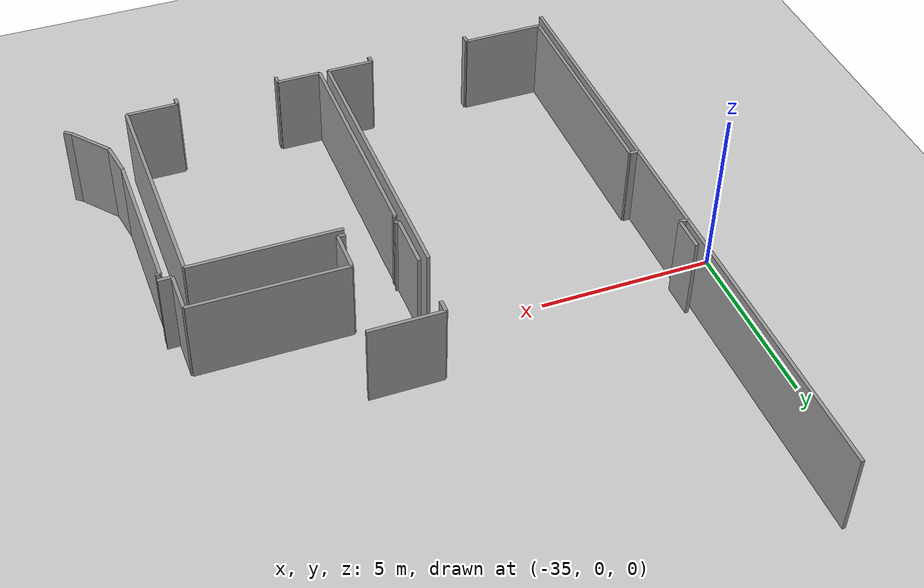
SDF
<sdf version="1.6">
 <world name="default">
  <model name="ground_plane">
   <static>1</static>
   <link name="link">
    <collision name="collision">
     <geometry><plane><normal>0 0 1</normal><size>100 100</size></plane></geometry>
     <surface><friction><ode><mu>100</mu><mu2>50</mu2></ode></friction></surface>
    </collision>
    <visual name="visual">
     <cast_shadows>0</cast_shadows>
     <geometry><plane><normal>0 0 1</normal><size>100 100</size></plane></geometry>
     <material>
      <script><uri>file://media/materials/scripts/gazebo.material</uri><name>Gazebo/Grey</name></script>
     </material>
    </visual>
   </link>
  </model>
  <model name="0510034841_A-40">
   <static>1</static>
   <link name="Wall_21">
    <collision name="Wall_21_Collision">
     <geometry><box><size>1.33530516909 0.1 2.5</size></box></geometry>
     <pose>0.667652584544 0 1.25 0 0 0</pose>
    </collision>
    <visual name="Wall_21_Visual">
     <pose>0.667652584544 0 1.25 0 0 0</pose>
     <geometry><box><size>1.33530516909 0.1 2.5</size></box></geometry>
     <material>
      <script><uri>file://media/materials/scripts/gazebo.material</uri><name>Gazebo/Grey</name></script>
      <ambient>1 1 1 1</ambient>
     </material>
    </visual>
    <pose>6.95732202701 -18.2493399005 0 0 0 3.14159265359</pose>
   </link>
   <link name="Wall_22">
    <collision name="Wall_22_Collision">
     <geometry><box><size>0.227353508683 0.1 2.5</size></box></geometry>
     <pose>0.113676754341 0 1.25 0 0 0</pose>
    </collision>
    <visual name="Wall_22_Visual">
     <pose>0.113676754341 0 1.25 0 0 0</pose>
     <geometry><box><size>0.227353508683 0.1 2.5</size></box></geometry>
     <material>
      <script><uri>file://media/materials/scripts/gazebo.material</uri><name>Gazebo/Grey</name></script>
      <ambient>1 1 1 1</ambient>
     </material>
    </visual>
    <pose>5.62201685793 -18.2493399005 0 0 0 -1.57079632679</pose>
   </link>
   <link name="Wall_23">
    <collision name="Wall_23_Collision">
     <geometry><box><size>0.243348227887 0.1 2.5</size></box></geometry>
     <pose>0.121674113943 0 1.25 0 0 0</pose>
    </collision>
    <visual name="Wall_23_Visual">
     <pose>0.121674113943 0 1.25 0 0 0</pose>
     <geometry><box><size>0.243348227887 0.1 2.5</size></box></geometry>
     <material>
      <script><uri>file://media/materials/scripts/gazebo.material</uri><name>Gazebo/Grey</name></script>
      <ambient>1 1 1 1</ambient>
     </material>
    </visual>
    <pose>2.59165227988 -18.4766934092 0 0 0 1.57079632679</pose>
   </link>
   <link name="Wall_24">
    <collision name="Wall_24_Collision">
     <geometry><box><size>2.34792322535 0.1 2.5</size></box></geometry>
     <pose>1.17396161267 0 1.25 0 0 0</pose>
    </collision>
    <visual name="Wall_24_Visual">
     <pose>1.17396161267 0 1.25 0 0 0</pose>
     <geometry><box><size>2.34792322535 0.1 2.5</size></box></geometry>
     <material>
      <script><uri>file://media/materials/scripts/gazebo.material</uri><name>Gazebo/Grey</name></script>
      <ambient>1 1 1 1</ambient>
     </material>
    </visual>
    <pose>2.59165227988 -18.2333451813 0 0 0 3.14159265359</pose>
   </link>
   <link name="Wall_25">
    <collision name="Wall_25_Collision">
     <geometry><box><size>6.46059713618 0.1 2.5</size></box></geometry>
     <pose>3.23029856809 0 1.25 0 0 0</pose>
    </collision>
    <visual name="Wall_25_Visual">
     <pose>3.23029856809 0 1.25 0 0 0</pose>
     <geometry><box><size>6.46059713618 0.1 2.5</size></box></geometry>
     <material>
      <script><uri>file://media/materials/scripts/gazebo.material</uri><name>Gazebo/Grey</name></script>
      <ambient>1 1 1 1</ambient>
     </material>
    </visual>
    <pose>0.243729054534 -18.2333451813 0 0 0 1.57079632679</pose>
   </link>
   <link name="Wall_26">
    <collision name="Wall_26_Collision">
     <geometry><box><size>0.243729054534 0.1 2.5</size></box></geometry>
     <pose>0.121864527267 0 1.25 0 0 0</pose>
    </collision>
    <visual name="Wall_26_Visual">
     <pose>0.121864527267 0 1.25 0 0 0</pose>
     <geometry><box><size>0.243729054534 0.1 2.5</size></box></geometry>
     <material>
      <script><uri>file://media/materials/scripts/gazebo.material</uri><name>Gazebo/Grey</name></script>
      <ambient>1 1 1 1</ambient>
     </material>
    </visual>
    <pose>0.243729054534 -11.7727480451 0 0 0 3.14159265359</pose>
   </link>
   <link name="Wall_27">
    <collision name="Wall_27_Collision">
     <geometry><box><size>0.227226566467 0.1 2.5</size></box></geometry>
     <pose>0.113613283233 0 1.25 0 0 0</pose>
    </collision>
    <visual name="Wall_27_Visual">
     <pose>0.113613283233 0 1.25 0 0 0</pose>
     <geometry><box><size>0.227226566467 0.1 2.5</size></box></geometry>
     <material>
      <script><uri>file://media/materials/scripts/gazebo.material</uri><name>Gazebo/Grey</name></script>
      <ambient>1 1 1 1</ambient>
     </material>
    </visual>
    <pose>0.0 -8.76231339494 0 0 0 0.0</pose>
   </link>
   <link name="Wall_28">
    <collision name="Wall_28_Collision">
     <geometry><box><size>0.990910937341 0.1 2.5</size></box></geometry>
     <pose>0.495455468671 0 1.25 0 0 0</pose>
    </collision>
    <visual name="Wall_28_Visual">
     <pose>0.495455468671 0 1.25 0 0 0</pose>
     <geometry><box><size>0.990910937341 0.1 2.5</size></box></geometry>
     <material>
      <script><uri>file://media/materials/scripts/gazebo.material</uri><name>Gazebo/Grey</name></script>
      <ambient>1 1 1 1</ambient>
     </material>
    </visual>
    <pose>0.227226566467 -8.76231339494 0 0 0 1.57079632679</pose>
   </link>
   <link name="Wall_32">
    <collision name="Wall_32_Collision">
     <geometry><box><size>8.51401442064 0.1 2.5</size></box></geometry>
     <pose>4.25700721032 0 1.25 0 0 0</pose>
    </collision>
    <visual name="Wall_32_Visual">
     <pose>4.25700721032 0 1.25 0 0 0</pose>
     <geometry><box><size>8.51401442064 0.1 2.5</size></box></geometry>
     <material>
      <script><uri>file://media/materials/scripts/gazebo.material</uri><name>Gazebo/Grey</name></script>
      <ambient>1 1 1 1</ambient>
     </material>
    </visual>
    <pose>6.95732202701 -9.73532547984 0 0 0 -1.57079632679</pose>
   </link>
   <link name="Wall_33">
    <collision name="Wall_33_Collision">
     <geometry><box><size>1.48166954402 0.1 2.5</size></box></geometry>
     <pose>0.740834772012 0 1.25 0 0 0</pose>
    </collision>
    <visual name="Wall_33_Visual">
     <pose>0.740834772012 0 1.25 0 0 0</pose>
     <geometry><box><size>1.48166954402 0.1 2.5</size></box></geometry>
     <material>
      <script><uri>file://media/materials/scripts/gazebo.material</uri><name>Gazebo/Grey</name></script>
      <ambient>1 1 1 1</ambient>
     </material>
    </visual>
    <pose>12.988600589 -18.2421041942 0 0 0 3.14159265359</pose>
   </link>
   <link name="Wall_34">
    <collision name="Wall_34_Collision">
     <geometry><box><size>0.247156494364 0.1 2.5</size></box></geometry>
     <pose>0.123578247182 0 1.25 0 0 0</pose>
    </collision>
    <visual name="Wall_34_Visual">
     <pose>0.123578247182 0 1.25 0 0 0</pose>
     <geometry><box><size>0.247156494364 0.1 2.5</size></box></geometry>
     <material>
      <script><uri>file://media/materials/scripts/gazebo.material</uri><name>Gazebo/Grey</name></script>
      <ambient>1 1 1 1</ambient>
     </material>
    </visual>
    <pose>11.506931045 -18.2421041942 0 0 0 -1.57079632679</pose>
   </link>
   <link name="Wall_35">
    <collision name="Wall_35_Collision">
     <geometry><box><size>0.246902609932 0.1 2.5</size></box></geometry>
     <pose>0.123451304966 0 1.25 0 0 0</pose>
    </collision>
    <visual name="Wall_35_Visual">
     <pose>0.123451304966 0 1.25 0 0 0</pose>
     <geometry><box><size>0.246902609932 0.1 2.5</size></box></geometry>
     <material>
      <script><uri>file://media/materials/scripts/gazebo.material</uri><name>Gazebo/Grey</name></script>
      <ambient>1 1 1 1</ambient>
     </material>
    </visual>
    <pose>8.49941606581 -18.4892606885 0 0 0 1.57079632679</pose>
   </link>
   <link name="Wall_36">
    <collision name="Wall_36_Collision">
     <geometry><box><size>1.27323042551 0.1 2.5</size></box></geometry>
     <pose>0.636615212755 0 1.25 0 0 0</pose>
    </collision>
    <visual name="Wall_36_Visual">
     <pose>0.636615212755 0 1.25 0 0 0</pose>
     <geometry><box><size>1.27323042551 0.1 2.5</size></box></geometry>
     <material>
      <script><uri>file://media/materials/scripts/gazebo.material</uri><name>Gazebo/Grey</name></script>
      <ambient>1 1 1 1</ambient>
     </material>
    </visual>
    <pose>8.49941606581 -18.2423580786 0 0 0 3.14159265359</pose>
   </link>
   <link name="Wall_37">
    <collision name="Wall_37_Collision">
     <geometry><box><size>6.6954402356 0.1 2.5</size></box></geometry>
     <pose>3.3477201178 0 1.25 0 0 0</pose>
    </collision>
    <visual name="Wall_37_Visual">
     <pose>3.3477201178 0 1.25 0 0 0</pose>
     <geometry><box><size>6.6954402356 0.1 2.5</size></box></geometry>
     <material>
      <script><uri>file://media/materials/scripts/gazebo.material</uri><name>Gazebo/Grey</name></script>
      <ambient>1 1 1 1</ambient>
     </material>
    </visual>
    <pose>7.2261856403 -18.2423580786 0 0 0 1.57079632679</pose>
   </link>
   <link name="Wall_38">
    <collision name="Wall_38_Collision">
     <geometry><box><size>0.0823854981213 0.1 2.5</size></box></geometry>
     <pose>0.0411927490606 0 1.25 0 0 0</pose>
    </collision>
    <visual name="Wall_38_Visual">
     <pose>0.0411927490606 0 1.25 0 0 0</pose>
     <geometry><box><size>0.0823854981213 0.1 2.5</size></box></geometry>
     <material>
      <script><uri>file://media/materials/scripts/gazebo.material</uri><name>Gazebo/Grey</name></script>
      <ambient>1 1 1 1</ambient>
     </material>
    </visual>
    <pose>7.2261856403 -11.546917843 0 0 0 0.0</pose>
   </link>
   <link name="Wall_39">
    <collision name="Wall_39_Collision">
     <geometry><box><size>4.31222707424 0.1 2.5</size></box></geometry>
     <pose>2.15611353712 0 1.25 0 0 0</pose>
    </collision>
    <visual name="Wall_39_Visual">
     <pose>2.15611353712 0 1.25 0 0 0</pose>
     <geometry><box><size>4.31222707424 0.1 2.5</size></box></geometry>
     <material>
      <script><uri>file://media/materials/scripts/gazebo.material</uri><name>Gazebo/Grey</name></script>
      <ambient>1 1 1 1</ambient>
     </material>
    </visual>
    <pose>8.6701533462 -11.546917843 0 0 0 0.0</pose>
   </link>
   <link name="Wall_40">
    <collision name="Wall_40_Collision">
     <geometry><box><size>6.6951892406 0.1 2.5</size></box></geometry>
     <pose>3.3475946203 0 1.25 0 0 0</pose>
    </collision>
    <visual name="Wall_40_Visual">
     <pose>3.3475946203 0 1.25 0 0 0</pose>
     <geometry><box><size>6.6951892406 0.1 2.5</size></box></geometry>
     <material>
      <script><uri>file://media/materials/scripts/gazebo.material</uri><name>Gazebo/Grey</name></script>
      <ambient>1 1 1 1</ambient>
     </material>
    </visual>
    <pose>12.9823804204 -11.546917843 0 0 0 -1.56986727621</pose>
   </link>
   <link name="Wall_42">
    <collision name="Wall_42_Collision">
     <geometry><box><size>0.403041535493 0.1 2.5</size></box></geometry>
     <pose>0.201520767747 0 1.25 0 0 0</pose>
    </collision>
    <visual name="Wall_42_Visual">
     <pose>0.201520767747 0 1.25 0 0 0</pose>
     <geometry><box><size>0.403041535493 0.1 2.5</size></box></geometry>
     <material>
      <script><uri>file://media/materials/scripts/gazebo.material</uri><name>Gazebo/Grey</name></script>
      <ambient>1 1 1 1</ambient>
     </material>
    </visual>
    <pose>13.743525947 -11.3138519346 0 0 0 3.14159265359</pose>
   </link>
   <link name="Wall_43">
    <collision name="Wall_43_Collision">
     <geometry><box><size>1.18107037676 0.1 2.5</size></box></geometry>
     <pose>0.590535188382 0 1.25 0 0 0</pose>
    </collision>
    <visual name="Wall_43_Visual">
     <pose>0.590535188382 0 1.25 0 0 0</pose>
     <geometry><box><size>1.18107037676 0.1 2.5</size></box></geometry>
     <material>
      <script><uri>file://media/materials/scripts/gazebo.material</uri><name>Gazebo/Grey</name></script>
      <ambient>1 1 1 1</ambient>
     </material>
    </visual>
    <pose>13.3404844115 -11.3138519346 0 0 0 1.57079632679</pose>
   </link>
   <link name="Wall_44">
    <collision name="Wall_44_Collision">
     <geometry><box><size>4.42825225957 0.1 2.5</size></box></geometry>
     <pose>2.21412612979 0 1.25 0 0 0</pose>
    </collision>
    <visual name="Wall_44_Visual">
     <pose>2.21412612979 0 1.25 0 0 0</pose>
     <geometry><box><size>4.42825225957 0.1 2.5</size></box></geometry>
     <material>
      <script><uri>file://media/materials/scripts/gazebo.material</uri><name>Gazebo/Grey</name></script>
      <ambient>1 1 1 1</ambient>
     </material>
    </visual>
    <pose>13.3404844115 -10.1327815578 0 0 0 3.14159265359</pose>
   </link>
   <link name="Wall_45">
    <collision name="Wall_45_Collision">
     <geometry><box><size>1.1781507058 0.1 2.5</size></box></geometry>
     <pose>0.589075352899 0 1.25 0 0 0</pose>
    </collision>
    <visual name="Wall_45_Visual">
     <pose>0.589075352899 0 1.25 0 0 0</pose>
     <geometry><box><size>1.1781507058 0.1 2.5</size></box></geometry>
     <material>
      <script><uri>file://media/materials/scripts/gazebo.material</uri><name>Gazebo/Grey</name></script>
      <ambient>1 1 1 1</ambient>
     </material>
    </visual>
    <pose>8.91223215192 -10.1327815578 0 0 0 -1.57079632679</pose>
   </link>
   <link name="Wall_46">
    <collision name="Wall_46_Collision">
     <geometry><box><size>0.211231847263 0.1 2.5</size></box></geometry>
     <pose>0.105615923632 0 1.25 0 0 0</pose>
    </collision>
    <visual name="Wall_46_Visual">
     <pose>0.105615923632 0 1.25 0 0 0</pose>
     <geometry><box><size>0.211231847263 0.1 2.5</size></box></geometry>
     <material>
      <script><uri>file://media/materials/scripts/gazebo.material</uri><name>Gazebo/Grey</name></script>
      <ambient>1 1 1 1</ambient>
     </material>
    </visual>
    <pose>8.91223215192 -11.3109322636 0 0 0 3.14159265359</pose>
   </link>
   <link name="Wall_47">
    <collision name="Wall_47_Collision">
     <geometry><box><size>0.116913780847 0.1 2.5</size></box></geometry>
     <pose>0.0584568904235 0 1.25 0 0 0</pose>
    </collision>
    <visual name="Wall_47_Visual">
     <pose>0.0584568904235 0 1.25 0 0 0</pose>
     <geometry><box><size>0.116913780847 0.1 2.5</size></box></geometry>
     <material>
      <script><uri>file://media/materials/scripts/gazebo.material</uri><name>Gazebo/Grey</name></script>
      <ambient>1 1 1 1</ambient>
     </material>
    </visual>
    <pose>7.33218239058 -11.3109322636 0 0 0 3.14159265359</pose>
   </link>
   <link name="Wall_48">
    <collision name="Wall_48_Collision">
     <geometry><box><size>1.58753935209 0.1 2.5</size></box></geometry>
     <pose>0.793769676043 0 1.25 0 0 0</pose>
    </collision>
    <visual name="Wall_48_Visual">
     <pose>0.793769676043 0 1.25 0 0 0</pose>
     <geometry><box><size>1.58753935209 0.1 2.5</size></box></geometry>
     <material>
      <script><uri>file://media/materials/scripts/gazebo.material</uri><name>Gazebo/Grey</name></script>
      <ambient>1 1 1 1</ambient>
     </material>
    </visual>
    <pose>7.21526860973 -11.3109322636 0 0 0 1.57079632679</pose>
   </link>
   <link name="Wall_49">
    <collision name="Wall_49_Collision">
     <geometry><box><size>0.364831928506 0.1 2.5</size></box></geometry>
     <pose>0.182415964253 0 1.25 0 0 0</pose>
    </collision>
    <visual name="Wall_49_Visual">
     <pose>0.182415964253 0 1.25 0 0 0</pose>
     <geometry><box><size>0.364831928506 0.1 2.5</size></box></geometry>
     <material>
      <script><uri>file://media/materials/scripts/gazebo.material</uri><name>Gazebo/Grey</name></script>
      <ambient>1 1 1 1</ambient>
     </material>
    </visual>
    <pose>7.21526860973 -8.14347009241 0 0 0 1.57079632679</pose>
   </link>
   <link name="Wall_50">
    <collision name="Wall_50_Collision">
     <geometry><box><size>2.1096526861 0.1 2.5</size></box></geometry>
     <pose>1.05482634305 0 1.25 0 0 0</pose>
    </collision>
    <visual name="Wall_50_Visual">
     <pose>1.05482634305 0 1.25 0 0 0</pose>
     <geometry><box><size>2.1096526861 0.1 2.5</size></box></geometry>
     <material>
      <script><uri>file://media/materials/scripts/gazebo.material</uri><name>Gazebo/Grey</name></script>
      <ambient>1 1 1 1</ambient>
     </material>
    </visual>
    <pose>7.21526860973 -7.77863816391 0 0 0 0.0</pose>
   </link>
   <link name="Wall_74">
    <collision name="Wall_74_Collision">
     <geometry><box><size>0.115136589824 0.1 2.5</size></box></geometry>
     <pose>0.0575682949122 0 1.25 0 0 0</pose>
    </collision>
    <visual name="Wall_74_Visual">
     <pose>0.0575682949122 0 1.25 0 0 0</pose>
     <geometry><box><size>0.115136589824 0.1 2.5</size></box></geometry>
     <material>
      <script><uri>file://media/materials/scripts/gazebo.material</uri><name>Gazebo/Grey</name></script>
      <ambient>1 1 1 1</ambient>
     </material>
    </visual>
    <pose>13.7307047832 -11.535746928 0 0 0 3.14159265359</pose>
   </link>
   <link name="Wall_75">
    <collision name="Wall_75_Collision">
     <geometry><box><size>4.38928099929 0.1 2.5</size></box></geometry>
     <pose>2.19464049964 0 1.25 0 0 0</pose>
    </collision>
    <visual name="Wall_75_Visual">
     <pose>2.19464049964 0 1.25 0 0 0</pose>
     <geometry><box><size>4.38928099929 0.1 2.5</size></box></geometry>
     <material>
      <script><uri>file://media/materials/scripts/gazebo.material</uri><name>Gazebo/Grey</name></script>
      <ambient>1 1 1 1</ambient>
     </material>
    </visual>
    <pose>13.6155681934 -11.535746928 0 0 0 -1.57079632679</pose>
   </link>
   <link name="Wall_76">
    <collision name="Wall_76_Collision">
     <geometry><box><size>0.999267200339 0.1 2.5</size></box></geometry>
     <pose>0.49963360017 0 1.25 0 0 0</pose>
    </collision>
    <visual name="Wall_76_Visual">
     <pose>0.49963360017 0 1.25 0 0 0</pose>
     <geometry><box><size>0.999267200339 0.1 2.5</size></box></geometry>
     <material>
      <script><uri>file://media/materials/scripts/gazebo.material</uri><name>Gazebo/Grey</name></script>
      <ambient>1 1 1 1</ambient>
     </material>
    </visual>
    <pose>13.6155681934 -15.9250279273 0 0 0 -1.40128278006</pose>
   </link>
   <link name="Wall_77">
    <collision name="Wall_77_Collision">
     <geometry><box><size>1.30488334712 0.1 2.5</size></box></geometry>
     <pose>0.65244167356 0 1.25 0 0 0</pose>
    </collision>
    <visual name="Wall_77_Visual">
     <pose>0.65244167356 0 1.25 0 0 0</pose>
     <geometry><box><size>1.30488334712 0.1 2.5</size></box></geometry>
     <material>
      <script><uri>file://media/materials/scripts/gazebo.material</uri><name>Gazebo/Grey</name></script>
      <ambient>1 1 1 1</ambient>
     </material>
    </visual>
    <pose>13.7841474561 -16.9099725805 0 0 0 -0.885101039726</pose>
   </link>
   <link name="Wall_78">
    <collision name="Wall_78_Collision">
     <geometry><box><size>0.260751455362 0.1 2.5</size></box></geometry>
     <pose>0.130375727681 0 1.25 0 0 0</pose>
    </collision>
    <visual name="Wall_78_Visual">
     <pose>0.130375727681 0 1.25 0 0 0</pose>
     <geometry><box><size>0.260751455362 0.1 2.5</size></box></geometry>
     <material>
      <script><uri>file://media/materials/scripts/gazebo.material</uri><name>Gazebo/Grey</name></script>
      <ambient>1 1 1 1</ambient>
     </material>
    </visual>
    <pose>14.6104143394 -17.9199248502 0 0 0 -0.694738276197</pose>
   </link>
   <link name="Wall_315">
    <collision name="Wall_315_Collision">
     <geometry><box><size>18.6376561389 0.1 2.5</size></box></geometry>
     <pose>9.31882806946 0 1.25 0 0 0</pose>
    </collision>
    <visual name="Wall_315_Visual">
     <pose>9.31882806946 0 1.25 0 0 0</pose>
     <geometry><box><size>18.6376561389 0.1 2.5</size></box></geometry>
     <material>
      <script><uri>file://media/materials/scripts/gazebo.material</uri><name>Gazebo/Grey</name></script>
      <ambient>1 1 1 1</ambient>
     </material>
    </visual>
    <pose>0.0 -18.6376561389 0 0 0 1.57079632679</pose>
   </link>
   <pose>-33.8 9.33765613893 0 0 0 0</pose>
  </model>
 </world>
</sdf>
